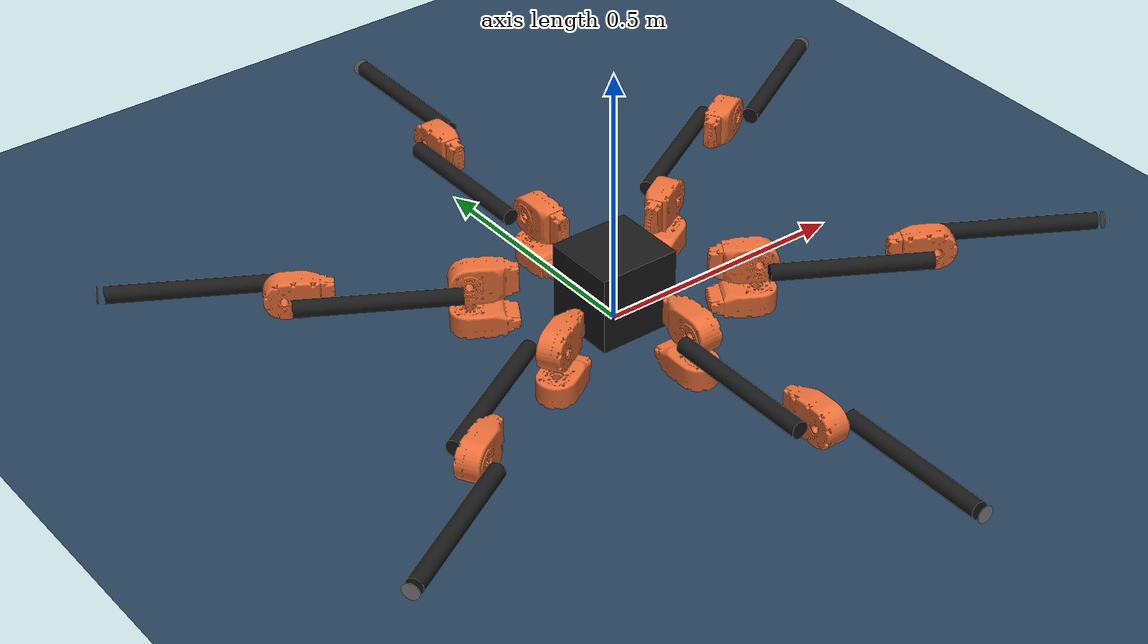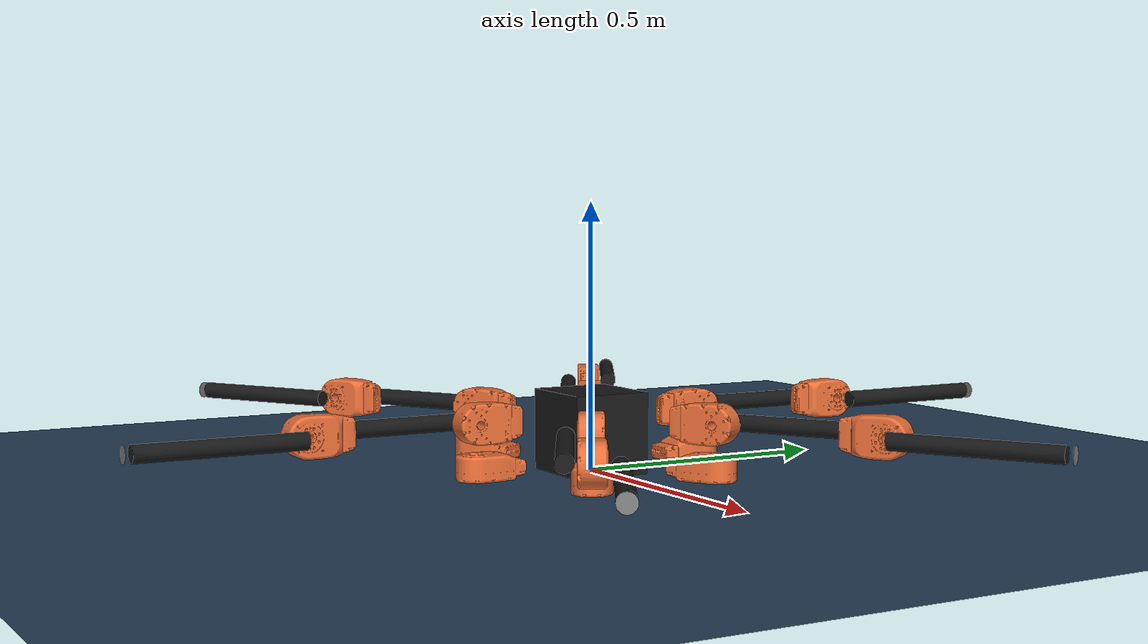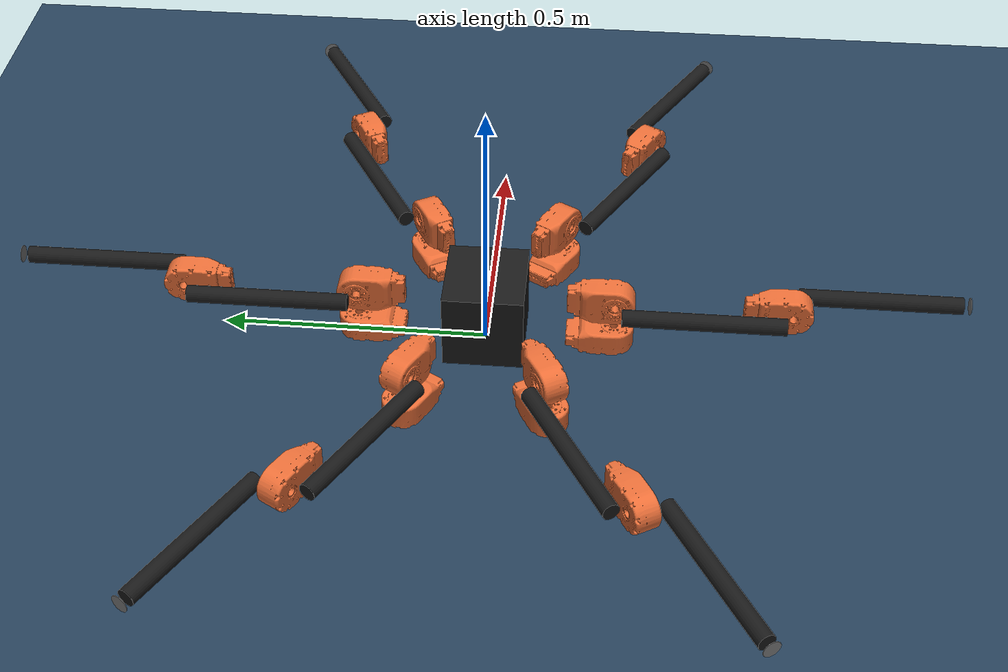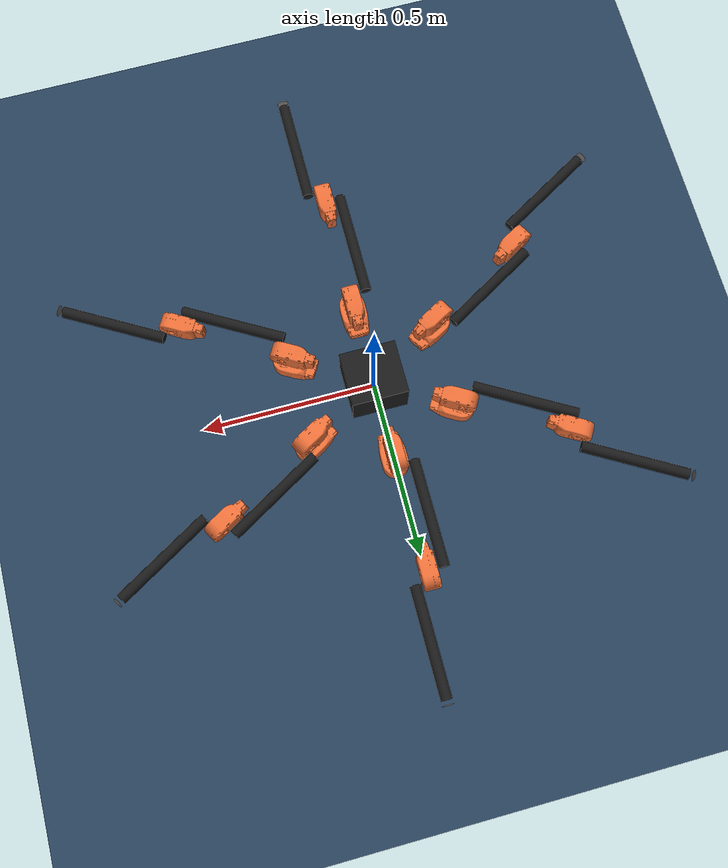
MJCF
<mujoco model="yuna">
  <compiler angle="radian" meshdir="meshes" />
  <asset>
    <mesh name="T8" content_type="model/stl" file="T8.stl" />
    <texture type="skybox" builtin="gradient" rgb1="0.3 0.5 0.7" rgb2="0 0 0" width="512" height="3072" />
    <texture type="2d" name="groundplane" builtin="checker" mark="edge" rgb1="0.2 0.3 0.4" rgb2="0.1 0.2 0.3" markrgb="0.8 0.8 0.8" width="300" height="300" />
    <material name="groundplane" texture="groundplane" texuniform="true" texrepeat="5 5" reflectance="0.2" />
  </asset>
  <visual>
    <headlight diffuse="0.6 0.6 0.6" ambient="0.3 0.3 0.3" specular="0 0 0" />
    <rgba haze="0.15 0.25 0.35 1" />
    <global azimuth="-130" elevation="-20" />
  </visual>
  <worldbody>
    <light pos="0 0 1.5" dir="0 0 -1" directional="true" />
    <geom name="floor" type="plane" size="0 0 0.05" material="groundplane" />
    <body name="base" pos="0 0 0">
      <freejoint name="root" />
      <geom size="0.08 0.075 0.09" pos="0 0 0.06" type="box" rgba="0.1 0.1 0.1 1" />
      <geom size="0.0158 0.063" pos="0.1209 -0.06985 -0.02" quat="0.68303 0.183012 0.682998 -0.183003" type="cylinder" rgba="0.1 0.1 0.1 1" />
      <geom size="0.0158 0.063" pos="0.1209 0.06985 -0.02" quat="0.68303 -0.183012 0.682998 0.183003" type="cylinder" rgba="0.1 0.1 0.1 1" />
      <geom size="0.0158 0.063" pos="-0.1209 0.06985 -0.02" quat="0.68303 0.183012 0.682998 -0.183003" type="cylinder" rgba="0.1 0.1 0.1 1" />
      <geom size="0.0158 0.063" pos="-0.1209 -0.06985 -0.02" quat="0.68303 -0.183012 0.682998 0.183003" type="cylinder" rgba="0.1 0.1 0.1 1" />
      <geom size="0.0158 0.038" pos="0 0.1147 -0.02" quat="0.500023 0.5 0.5 -0.499977" type="cylinder" rgba="0.1 0.1 0.1 1" />
      <geom size="0.0158 0.038" pos="0 -0.1147 -0.02" quat="0.500023 0.5 0.5 -0.499977" type="cylinder" rgba="0.1 0.1 0.1 1" />
      <geom pos="0.225166 0.13 0" quat="0.965926 0 0 0.25882" type="mesh" rgba="0.91 0.43 0.218 1" mesh="T8" />
      <geom pos="0.225166 -0.13 0" quat="0.965926 0 0 -0.25882" type="mesh" rgba="0.91 0.43 0.218 1" mesh="T8" />
      <geom pos="-8.81569e-07 0.24 0" quat="0.707105 0 0 0.707108" type="mesh" rgba="0.91 0.43 0.218 1" mesh="T8" />
      <geom pos="-8.81569e-07 -0.24 0" quat="0.707105 0 0 -0.707108" type="mesh" rgba="0.91 0.43 0.218 1" mesh="T8" />
      <geom pos="-0.225167 0.129999 0" quat="0.258816 0 0 0.965927" type="mesh" rgba="0.91 0.43 0.218 1" mesh="T8" />
      <geom pos="-0.225167 -0.129999 0" quat="0.258816 0 0 -0.965927" type="mesh" rgba="0.91 0.43 0.218 1" mesh="T8" />
      <body name="base_1FL_shoulder" pos="0.225166 0.13 0.0475" quat="0.965926 0 0 0.25882">
        <inertial pos="0.025037 0.000167526 0.019435" quat="-0.245347 0.741975 0.26607 0.564344" mass="0.79" diaginertia="0.00101903 0.000877696 0.000606846" />
        <joint name="1FL_base" pos="0 0 0" axis="0 0 1" range="-3.14 3.14" actuatorfrcrange="-60 60" />
        <geom pos="0 -0.0225 0.055" quat="0.707109 -0.707105 0 0" type="mesh" rgba="0.91 0.43 0.218 1" mesh="T8" />
        <body name="shoulder_1FL_tube" pos="0 0.025 0.0550003" quat="0.707109 -0.707105 0 0">
          <inertial pos="0.079914 0.0219432 0.211241" quat="0.682659 -0.198291 -0.120964 0.692838" mass="0.977" diaginertia="0.0339682 0.0309709 0.00340561" />
          <joint name="1FL_shoulder" pos="0 0 0" axis="0 0 1" range="-3.14 3.14" actuatorfrcrange="-60 60" />
          <geom size="0.016 0.1498" pos="0.1625 0 0.02" quat="0.707123 0 0.70709 0" type="cylinder" rgba="0.1 0.1 0.1 1" />
          <geom pos="0.325 0 0" quat="1.32679e-06 1 0 0" type="mesh" rgba="0.91 0.43 0.218 1" mesh="T8" />
          <body name="elbow_1FL_tube" pos="0.325 -1.26046e-07 -0.0475" quat="1.32679e-06 1 0 0">
            <inertial pos="0.183604 0 0.02" quat="0.5 0.5 0.5 0.5" mass="0.462" diaginertia="0.00523745 0.00523745 0.0003204" />
            <joint name="1FL_elbow" pos="0 0 0" axis="0 0 1" range="-3.14 3.14" actuatorfrcrange="-60 60" />
            <geom size="0.016 0.1498" pos="0.1625 0 0.02" quat="0.707123 0 0.70709 0" type="cylinder" rgba="0.1 0.1 0.1 1" />
            <geom size="0.016 0.0005" pos="0.3255 0 0.02" quat="0.707107 2.23686e-06 0.707107 2.23686e-06" type="cylinder" />
            <body name="foot_1FL_end" pos="0.3255 0 0.02" />
          </body>
        </body>
      </body>
      <body name="base_2FR_shoulder" pos="0.225166 -0.13 0.0475" quat="0.965926 0 0 -0.25882">
        <inertial pos="0.0164411 -0.0249092 0.0244779" quat="0.487469 0.615384 -0.357621 0.505751" mass="0.79" diaginertia="0.00124422 0.00111171 0.000599401" />
        <joint name="2FR_base" pos="0 0 0" axis="0 0 1" range="-3.14 3.14" actuatorfrcrange="-60 60" />
        <geom pos="0 0.0225 0.055" quat="0.707109 0.707105 0 0" type="mesh" rgba="0.91 0.43 0.218 1" mesh="T8" />
        <body name="shoulder_2FR_tube" pos="0 -0.025 0.0550003" quat="0.707109 0.707105 0 0">
          <inertial pos="0.079914 0.0219432 0.211241" quat="0.682659 -0.198291 -0.120964 0.692838" mass="0.977" diaginertia="0.0339682 0.0309709 0.00340561" />
          <joint name="2FR_shoulder" pos="0 0 0" axis="0 0 1" range="-3.14 3.14" actuatorfrcrange="-60 60" />
          <geom size="0.016 0.1498" pos="0.1625 0 0.02" quat="0.707123 0 0.70709 0" type="cylinder" rgba="0.1 0.1 0.1 1" />
          <geom pos="0.325 0 0" quat="1.32679e-06 1 0 0" type="mesh" rgba="0.91 0.43 0.218 1" mesh="T8" />
          <body name="elbow_2FR_tube" pos="0.325 -1.26046e-07 -0.0475" quat="1.32679e-06 1 0 0">
            <inertial pos="0.183604 0 0.02" quat="0.5 0.5 0.5 0.5" mass="0.462" diaginertia="0.00523745 0.00523745 0.0003204" />
            <joint name="2FR_elbow" pos="0 0 0" axis="0 0 1" range="-3.14 3.14" actuatorfrcrange="-60 60" />
            <geom size="0.016 0.1498" pos="0.1625 0 0.02" quat="0.707123 0 0.70709 0" type="cylinder" rgba="0.1 0.1 0.1 1" />
            <geom size="0.016 0.0005" pos="0.3255 0 0.02" quat="0.707107 2.23686e-06 0.707107 2.23686e-06" type="cylinder" />
            <body name="foot_2FR_end" pos="0.3255 0 0.02" />
          </body>
        </body>
      </body>
      <body name="base_3ML_shoulder" pos="-8.81569e-07 0.24 0.0475" quat="0.707105 0 0 0.707108">
        <inertial pos="0.025037 0.000167526 0.019435" quat="-0.245347 0.741975 0.26607 0.564344" mass="0.79" diaginertia="0.00101903 0.000877696 0.000606846" />
        <joint name="3ML_base" pos="0 0 0" axis="0 0 1" range="-3.14 3.14" actuatorfrcrange="-60 60" />
        <geom pos="0 -0.0225 0.055" quat="0.707109 -0.707105 0 0" type="mesh" rgba="0.91 0.43 0.218 1" mesh="T8" />
        <body name="shoulder_3ML_tube" pos="0 0.025 0.0550003" quat="0.707109 -0.707105 0 0">
          <inertial pos="0.079914 0.0219432 0.211241" quat="0.682659 -0.198291 -0.120964 0.692838" mass="0.977" diaginertia="0.0339682 0.0309709 0.00340561" />
          <joint name="3ML_shoulder" pos="0 0 0" axis="0 0 1" range="-3.14 3.14" actuatorfrcrange="-60 60" />
          <geom size="0.016 0.1498" pos="0.1625 0 0.02" quat="0.707123 0 0.70709 0" type="cylinder" rgba="0.1 0.1 0.1 1" />
          <geom pos="0.325 0 0" quat="1.32679e-06 1 0 0" type="mesh" rgba="0.91 0.43 0.218 1" mesh="T8" />
          <body name="elbow_3ML_tube" pos="0.325 -1.26046e-07 -0.0475" quat="1.32679e-06 1 0 0">
            <inertial pos="0.183604 0 0.02" quat="0.5 0.5 0.5 0.5" mass="0.462" diaginertia="0.00523745 0.00523745 0.0003204" />
            <joint name="3ML_elbow" pos="0 0 0" axis="0 0 1" range="-3.14 3.14" actuatorfrcrange="-60 60" />
            <geom size="0.016 0.1498" pos="0.1625 0 0.02" quat="0.707123 0 0.70709 0" type="cylinder" rgba="0.1 0.1 0.1 1" />
            <geom size="0.016 0.0005" pos="0.3255 -3e-09 0.02" quat="0.707107 4.35818e-06 0.707107 1.15539e-07" type="cylinder" />
            <body name="foot_3ML_end" pos="0.3255 0 0.02" />
          </body>
        </body>
      </body>
      <body name="base_4MR_shoulder" pos="-8.81569e-07 -0.24 0.0475" quat="0.707105 0 0 -0.707108">
        <inertial pos="0.0164411 -0.0249092 0.0244779" quat="0.487469 0.615384 -0.357621 0.505751" mass="0.79" diaginertia="0.00124422 0.00111171 0.000599401" />
        <joint name="4MR_base" pos="0 0 0" axis="0 0 1" range="-3.14 3.14" actuatorfrcrange="-60 60" />
        <geom pos="0 0.0225 0.055" quat="0.707109 0.707105 0 0" type="mesh" rgba="0.91 0.43 0.218 1" mesh="T8" />
        <body name="shoulder_4MR_tube" pos="0 -0.025 0.0550003" quat="0.707109 0.707105 0 0">
          <inertial pos="0.079914 0.0219432 0.211241" quat="0.682659 -0.198291 -0.120964 0.692838" mass="0.977" diaginertia="0.0339682 0.0309709 0.00340561" />
          <joint name="4MR_shoulder" pos="0 0 0" axis="0 0 1" range="-3.14 3.14" actuatorfrcrange="-60 60" />
          <geom size="0.016 0.1498" pos="0.1625 0 0.02" quat="0.707123 0 0.70709 0" type="cylinder" rgba="0.1 0.1 0.1 1" />
          <geom pos="0.325 0 0" quat="1.32679e-06 1 0 0" type="mesh" rgba="0.91 0.43 0.218 1" mesh="T8" />
          <body name="elbow_4MR_tube" pos="0.325 -1.26046e-07 -0.0475" quat="1.32679e-06 1 0 0">
            <inertial pos="0.183604 0 0.02" quat="0.5 0.5 0.5 0.5" mass="0.462" diaginertia="0.00523745 0.00523745 0.0003204" />
            <joint name="4MR_elbow" pos="0 0 0" axis="0 0 1" range="-3.14 3.14" actuatorfrcrange="-60 60" />
            <geom size="0.016 0.1498" pos="0.1625 0 0.02" quat="0.707123 0 0.70709 0" type="cylinder" rgba="0.1 0.1 0.1 1" />
            <geom size="0.016 0.0005" pos="0.3255 0 0.02" quat="0.707107 2.23686e-06 0.707107 2.23686e-06" type="cylinder" />
            <body name="foot_4MR_end" pos="0.3255 0 0.02" />
          </body>
        </body>
      </body>
      <body name="base_5BL_shoulder" pos="-0.225167 0.129999 0.0475" quat="0.258816 0 0 0.965927">
        <inertial pos="0.025037 0.000167526 0.019435" quat="-0.245347 0.741975 0.26607 0.564344" mass="0.79" diaginertia="0.00101903 0.000877696 0.000606846" />
        <joint name="5BL_base" pos="0 0 0" axis="0 0 1" range="-3.14 3.14" actuatorfrcrange="-60 60" />
        <geom pos="0 -0.0225 0.055" quat="0.707109 -0.707105 0 0" type="mesh" rgba="0.91 0.43 0.218 1" mesh="T8" />
        <body name="shoulder_5BL_tube" pos="0 0.025 0.0550003" quat="0.707109 -0.707105 0 0">
          <inertial pos="0.079914 0.0219432 0.211241" quat="0.682659 -0.198291 -0.120964 0.692838" mass="0.977" diaginertia="0.0339682 0.0309709 0.00340561" />
          <joint name="5BL_shoulder" pos="0 0 0" axis="0 0 1" range="-3.14 3.14" actuatorfrcrange="-60 60" />
          <geom size="0.016 0.1498" pos="0.1625 0 0.02" quat="0.707123 0 0.70709 0" type="cylinder" rgba="0.1 0.1 0.1 1" />
          <geom pos="0.325 0 0" quat="1.32679e-06 1 0 0" type="mesh" rgba="0.91 0.43 0.218 1" mesh="T8" />
          <body name="elbow_5BL_tube" pos="0.325 -1.26046e-07 -0.0475" quat="1.32679e-06 1 0 0">
            <inertial pos="0.183604 0 0.02" quat="0.5 0.5 0.5 0.5" mass="0.462" diaginertia="0.00523745 0.00523745 0.0003204" />
            <joint name="5BL_elbow" pos="0 0 0" axis="0 0 1" range="-3.14 3.14" actuatorfrcrange="-60 60" />
            <geom size="0.016 0.1498" pos="0.1625 0 0.02" quat="0.707123 0 0.70709 0" type="cylinder" rgba="0.1 0.1 0.1 1" />
            <geom size="0.016 0.0005" pos="0.3255 0 0.02" quat="0.707107 2.23686e-06 0.707107 2.23686e-06" type="cylinder" />
            <body name="foot_5BL_end" pos="0.3255 0 0.02" />
          </body>
        </body>
      </body>
      <body name="base_6BR_shoulder" pos="-0.225167 -0.129999 0.0475" quat="0.258816 0 0 -0.965927">
        <inertial pos="0.0164411 -0.0249092 0.0244779" quat="0.487469 0.615384 -0.357621 0.505751" mass="0.79" diaginertia="0.00124422 0.00111171 0.000599401" />
        <joint name="6BR_base" pos="0 0 0" axis="0 0 1" range="-3.14 3.14" actuatorfrcrange="-60 60" />
        <geom pos="0 0.0225 0.055" quat="0.707109 0.707105 0 0" type="mesh" rgba="0.91 0.43 0.218 1" mesh="T8" />
        <body name="shoulder_6BR_tube" pos="0 -0.025 0.0550003" quat="0.707109 0.707105 0 0">
          <inertial pos="0.079914 0.0219432 0.211241" quat="0.682659 -0.198291 -0.120964 0.692838" mass="0.977" diaginertia="0.0339682 0.0309709 0.00340561" />
          <joint name="6BR_shoulder" pos="0 0 0" axis="0 0 1" range="-3.14 3.14" actuatorfrcrange="-60 60" />
          <geom size="0.016 0.1498" pos="0.1625 0 0.02" quat="0.707123 0 0.70709 0" type="cylinder" rgba="0.1 0.1 0.1 1" />
          <geom pos="0.325 0 0" quat="1.32679e-06 1 0 0" type="mesh" rgba="0.91 0.43 0.218 1" mesh="T8" />
          <body name="elbow_6BR_tube" pos="0.325 -1.26046e-07 -0.0475" quat="1.32679e-06 1 0 0">
            <inertial pos="0.183604 0 0.02" quat="0.5 0.5 0.5 0.5" mass="0.462" diaginertia="0.00523745 0.00523745 0.0003204" />
            <joint name="6BR_elbow" pos="0 0 0" axis="0 0 1" range="-3.14 3.14" actuatorfrcrange="-60 60" />
            <geom size="0.016 0.1498" pos="0.1625 0 0.02" quat="0.707123 0 0.70709 0" type="cylinder" rgba="0.1 0.1 0.1 1" />
            <geom size="0.016 0.0005" pos="0.3255 0 0.02" quat="0.707107 2.23686e-06 0.707107 2.23686e-06" type="cylinder" />
            <body name="foot_6BR_end" pos="0.3255 0 0.02" />
          </body>
        </body>
      </body>
    </body>
  </worldbody>
</mujoco>
